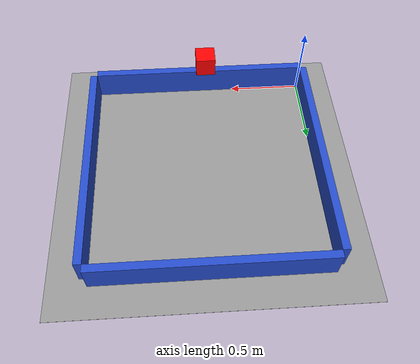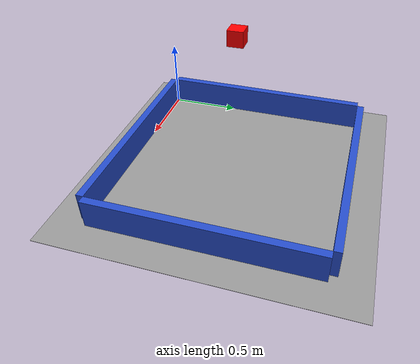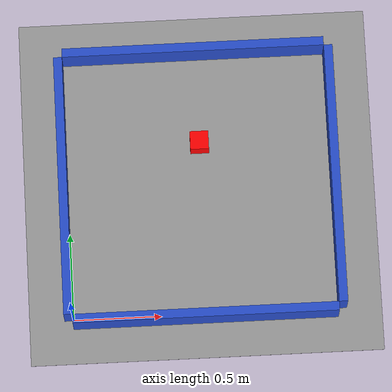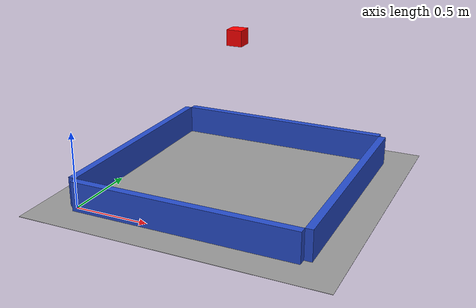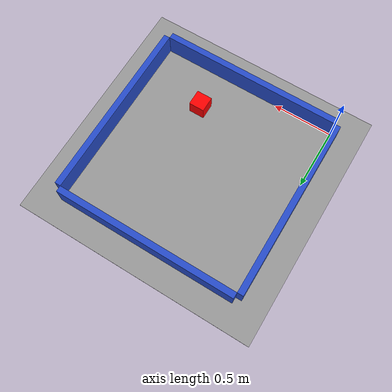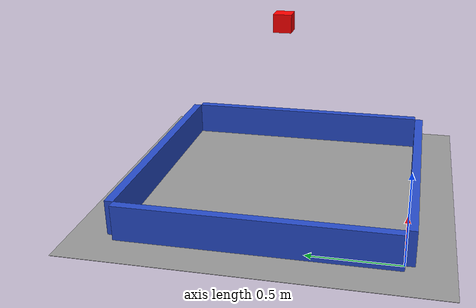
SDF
<?xml version="1.0" ?>
<sdf version="1.6">
  <world name="square_arena_with_walls">
    <physics type="ode">
      <real_time_update_rate>1000</real_time_update_rate>
    </physics>
    <scene>
      <ambient>0.4 0.4 0.4 1</ambient>
      <background>0.7 0.7 0.7 1</background>
    </scene>
    <light name="sun" type="directional">
      <cast_shadows>true</cast_shadows>
      <pose>0 0 10 0 -0 0</pose>
      <diffuse>1 1 1 1</diffuse>
      <specular>0.1 0.1 0.1 1</specular>
      <attenuation>
        <range>1000</range>
        <constant>0.9</constant>
        <linear>0.01</linear>
        <quadratic>0.001</quadratic>
      </attenuation>
      <direction>-0.5 0.5 -1</direction>
    </light>

    <!-- Arena Camera - Top Down View with 170° FOV -->
    <model name="arena_camera">
      <static>true</static>
      <link name="link">
        <pose>0.75 0.75 1.0 0 1.5708 0</pose>

        <!-- Visual element to see the camera -->
        <visual name="camera_visual">
          <geometry>
            <box>
              <size>0.1 0.1 0.1</size>
            </box>
          </geometry>
          <material>
            <ambient>1 0 0 1</ambient>
            <diffuse>1 0 0 1</diffuse>
          </material>
        </visual>

        <sensor name="arena_camera" type="wideanglecamera">
          <pose>0 0 0 0 0 0</pose> <!-- Try without rotation first -->
          <camera>
            <horizontal_fov>2.2689</horizontal_fov>
            <image>
              <width>800</width> <!-- If this changes, hardcoded values in camera_info_publisher must be changed-->
              <height>600</height> <!-- If this changes, hardcoded values in camera_info_publisher must be changed-->
              <format>R8G8B8</format> <!-- Gazebo does not support grayscale cameras-->
            </image>
            <clip>
              <near>0.01</near>
              <far>10</far>
            </clip>
            <!-- https://classic.gazebosim.org/tutorials?tut=wide_angle_camera&cat= -->
            <!-- https://en.wikipedia.org/wiki/Fisheye_lens#Mapping_function -->
            <lens>
              <type>custom</type>
              <custom_function>
                <c1>1.8</c1>    <!-- Strong distortion -->
                <c2>1.5</c2>    <!-- Angle compression -->
                <f>1.0</f>
                <fun>sin</fun>  <!-- Common in cheap lenses -->
              </custom_function>
              <scale_to_hfov>true</scale_to_hfov>
              <cutoff_angle>2.9671</cutoff_angle>
            </lens>
          </camera>
          <always_on>true</always_on>
          <update_rate>30</update_rate>
          <visualize>true</visualize>
          <topic>arena_camera/image_sim_color</topic> <!-- Gazebo does not support grayscale cameras-->
          <plugin filename="ignition-gazebo-sensors-system" name="ignition::gazebo::systems::Sensors">
            <render_engine>ogre2</render_engine>
          </plugin>
        </sensor>
      </link>
    </model>

    <model name="arena">
      <static>true</static>
      <!-- Ground Plane -->
      <link name="ground_plane">
        <pose>0.75 0.75 0 0 0 0</pose>
        <collision name="collision">
          <geometry>
            <plane>
              <normal>0 0 1</normal>
              <size>2 2</size>
            </plane>
          </geometry>
          <surface>
            <friction>
              <ode>
                <mu>1</mu>
                <mu2>1</mu2>
              </ode>
            </friction>
            <contact>
              <ode/>
            </contact>
          </surface>
        </collision>
        <visual name="visual">
          <geometry>
            <plane>
              <normal>0 0 1</normal>
              <size>2 2</size>
            </plane>
          </geometry>
          <material>
            <script>
              <uri>file://media/materials/scripts/gazebo.material</uri>
              <name>Gazebo/Gray</name>
            </script>
          </material>
        </visual>
      </link>
      <!-- Walls -->
      <!-- North wall (top wall) -->
      <link name="wall_north">
        <pose>0.75 1.525 0.1 0 0 0</pose>
        <collision name="collision">
          <geometry>
            <box>
              <size>1.5 0.05 0.2</size>
            </box>
          </geometry>
        </collision>
        <visual name="visual">
          <geometry>
            <box>
              <size>1.5 0.05 0.2</size>
            </box>
          </geometry>
          <material>
            <script>
              <uri>file://media/materials/scripts/gazebo.material</uri>
              <name>Gazebo/Blue</name>
            </script>
          </material>
        </visual>
      </link>
      <!-- South wall (bottom wall) -->
      <link name="wall_south">
        <pose>0.75 -0.025 0.1 0 0 0</pose>
        <collision name="collision">
          <geometry>
            <box>
              <size>1.5 0.05 0.2</size>
            </box>
          </geometry>
        </collision>
        <visual name="visual">
          <geometry>
            <box>
              <size>1.5 0.05 0.2</size>
            </box>
          </geometry>
          <material>
            <script>
              <uri>file://media/materials/scripts/gazebo.material</uri>
              <name>Gazebo/Blue</name>
            </script>
          </material>
        </visual>
      </link>
      <!-- East wall (right wall) -->
      <link name="wall_east">
        <pose>1.525 0.75 0.1 0 0 0</pose>
        <collision name="collision">
          <geometry>
            <box>
              <size>0.05 1.5 0.2</size>
            </box>
          </geometry>
        </collision>
        <visual name="visual">
          <geometry>
            <box>
              <size>0.05 1.5 0.2</size>
            </box>
          </geometry>
          <material>
            <script>
              <uri>file://media/materials/scripts/gazebo.material</uri>
              <name>Gazebo/Blue</name>
            </script>
          </material>
        </visual>
      </link>
      <!-- West wall (left wall) -->
      <link name="wall_west">
        <pose>-0.025 0.75 0.1 0 0 0</pose>
        <collision name="collision">
          <geometry>
            <box>
              <size>0.05 1.5 0.2</size>
            </box>
          </geometry>
        </collision>
        <visual name="visual">
          <geometry>
            <box>
              <size>0.05 1.5 0.2</size>
            </box>
          </geometry>
          <material>
            <script>
              <uri>file://media/materials/scripts/gazebo.material</uri>
              <name>Gazebo/Blue</name>
            </script>
          </material>
        </visual>
      </link>
    </model>
  </world>
</sdf>
